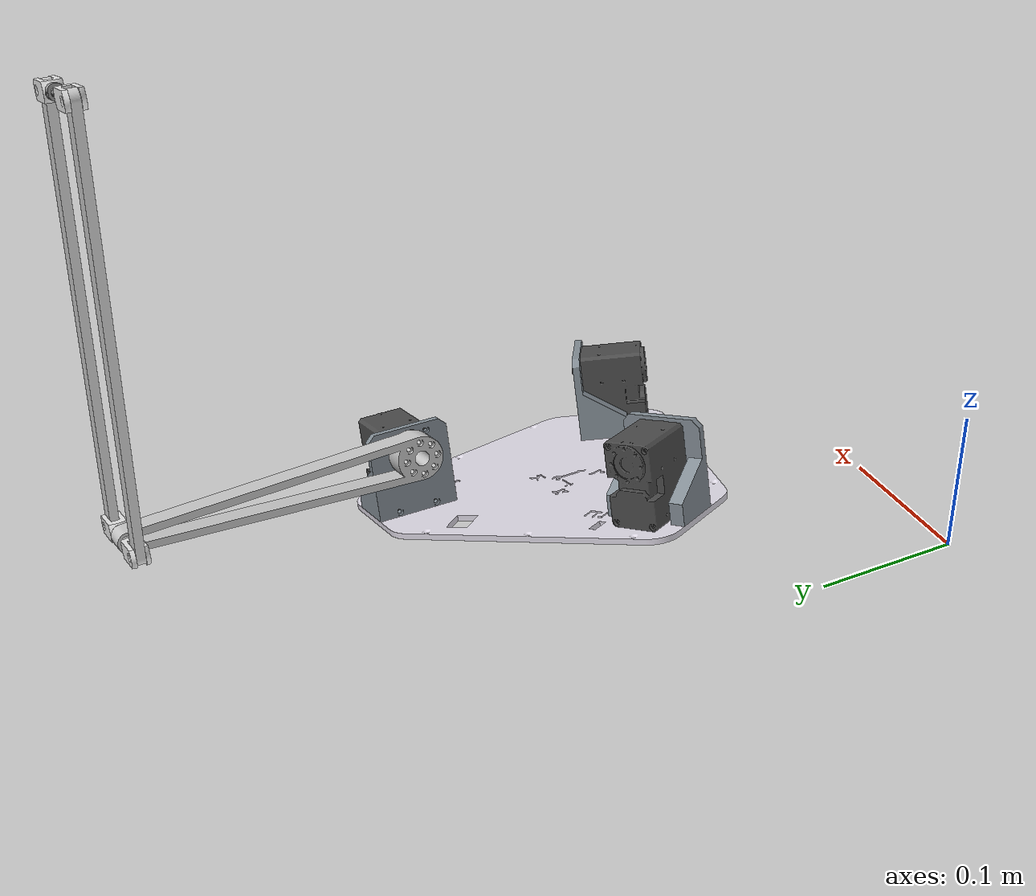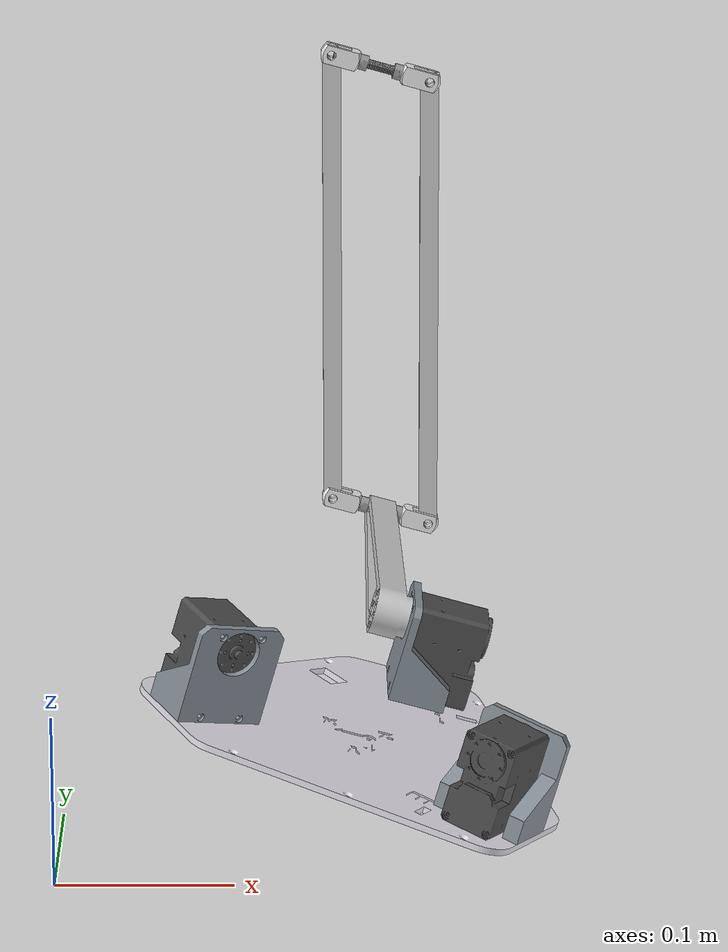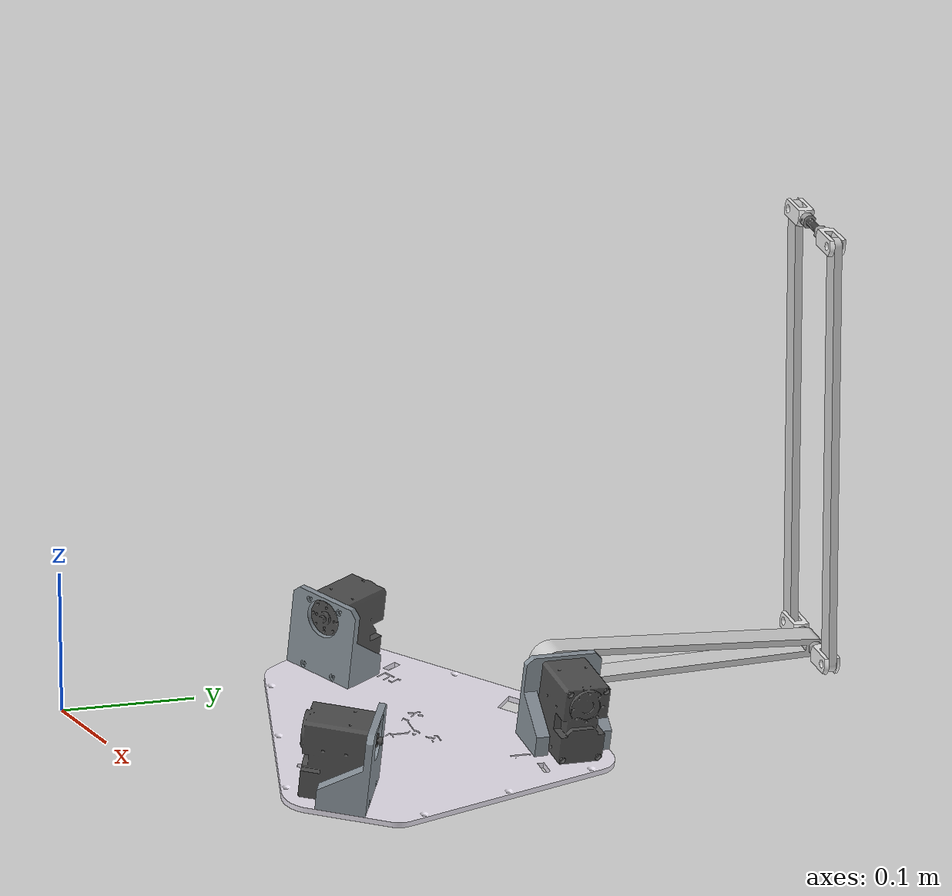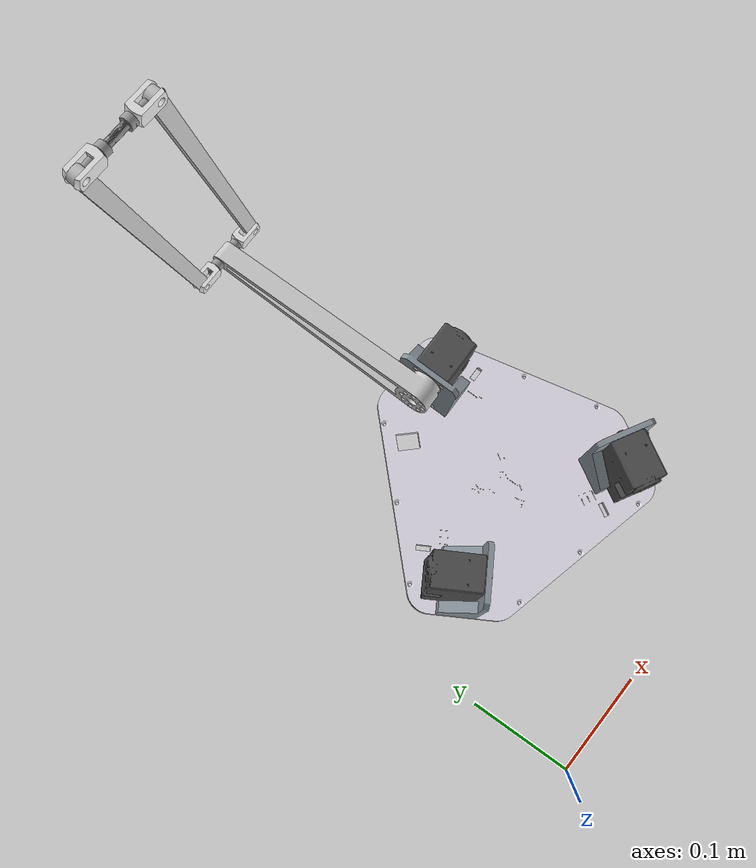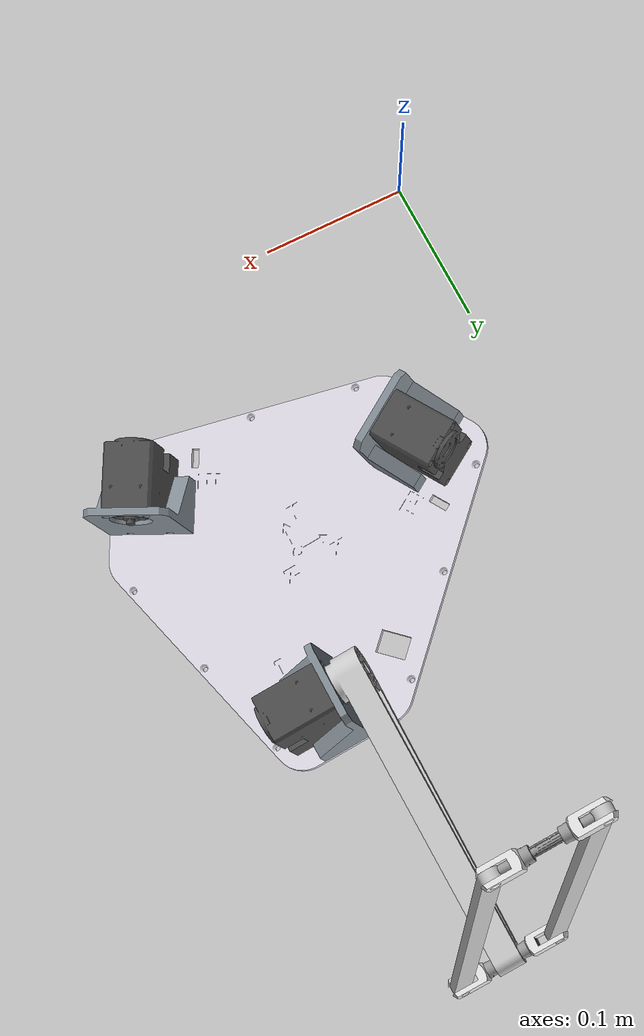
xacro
<?xml version="1.0"?>
<robot xmlns:xacro="http://www.ros.org/wiki/xacro" name="delta_robot">

    <link name = "world"></link>

        <joint name="base_joint" type="fixed">
            <origin xyz="0.2 0.2 0.002" rpy="0 0 0"/>
            <parent link="world"/>
            <child link="base_link"/>
        </joint>

    <link name="base_link">
    <visual>
    <origin xyz="-0.023110031553627802953 0.00059761139126591491209 0.00046021017996433028971" rpy="0.23991700798968396136 -0.13634001380767415967 2.0779359206972989327" />
    <geometry>
    <mesh filename="file://$(find delta_robot_description)/meshes/delta_robot/motor_mount.stl"/>
    </geometry>
    <material name="motor_mount_material">
    <color rgba="0.52941176470588235947 0.56862745098039213509 0.5999999999999999778 1.0"/>
    </material>
    </visual>
    <collision>
    <origin xyz="-0.023110031553627802953 0.00059761139126591491209 0.00046021017996433028971" rpy="0.23991700798968396136 -0.13634001380767415967 2.0779359206972989327" />
    <geometry>
    <mesh filename="file://$(find delta_robot_description)/meshes/delta_robot/motor_mount.stl"/>
    </geometry>
    </collision>
    <visual>
    <origin xyz="-0.023110031553628077039 0.00059761139126571715362 0.00046021017996440791858" rpy="-4.3919174410874769769e-17 0.27530038467016254566 -1.368025789096229261e-16" />
    <geometry>
    <mesh filename="file://$(find delta_robot_description)/meshes/delta_robot/base_plate.stl"/>
    </geometry>
    <material name="base_plate_material">
    <color rgba="0.89019607843137249503 0.87058823529411766273 0.91764705882352937127 1.0"/>
    </material>
    </visual>
    <collision>
    <origin xyz="-0.023110031553628077039 0.00059761139126571715362 0.00046021017996440791858" rpy="-4.3919174410874769769e-17 0.27530038467016254566 -1.368025789096229261e-16" />
    <geometry>
    <mesh filename="file://$(find delta_robot_description)/meshes/delta_robot/base_plate.stl"/>
    </geometry>
    </collision>
    <visual>
    <origin xyz="-0.023110031553628021528 0.00059761139126571715362 0.00046021017996439143871" rpy="-0.23991700798968387809 -0.13634001380767438172 -2.0779359206972998209" />
    <geometry>
    <mesh filename="file://$(find delta_robot_description)/meshes/delta_robot/motor_mount.stl"/>
    </geometry>
    <material name="motor_mount_material">
    <color rgba="0.52941176470588235947 0.56862745098039213509 0.5999999999999999778 1.0"/>
    </material>
    </visual>
    <collision>
    <origin xyz="-0.023110031553628021528 0.00059761139126571715362 0.00046021017996439143871" rpy="-0.23991700798968387809 -0.13634001380767438172 -2.0779359206972998209" />
    <geometry>
    <mesh filename="file://$(find delta_robot_description)/meshes/delta_robot/motor_mount.stl"/>
    </geometry>
    </collision>
    <visual>
    <origin xyz="0.054116209116546964975 -0.084259911111058571898 0.02930346982099296671" rpy="1.7111047631626310483 -0.23764750301736276006 2.6012158521185204663" />
    <geometry>
    <mesh filename="file://$(find delta_robot_description)/meshes/delta_robot/dc13_x540_dummy.stl"/>
    </geometry>
    <material name="dc13_x540_dummy_material">
    <color rgba="0.30196078431372547213 0.30196078431372547213 0.30196078431372547213 1.0"/>
    </material>
    </visual>
    <collision>
    <origin xyz="0.054116209116546964975 -0.084259911111058571898 0.02930346982099296671" rpy="1.7111047631626310483 -0.23764750301736276006 2.6012158521185204663" />
    <geometry>
    <mesh filename="file://$(find delta_robot_description)/meshes/delta_robot/dc13_x540_dummy.stl"/>
    </geometry>
    </collision>
    <visual>
    <origin xyz="0.028876303865395819975 0.1005976113912657316 0.036433060076806682293" rpy="1.2954959421247342899 -1.8687322889693179291e-17 -1.57079632679489678" />
    <geometry>
    <mesh filename="file://$(find delta_robot_description)/meshes/delta_robot/dc13_x540_dummy.stl"/>
    </geometry>
    <material name="dc13_x540_dummy_material">
    <color rgba="0.30196078431372547213 0.30196078431372547213 0.30196078431372547213 1.0"/>
    </material>
    </visual>
    <collision>
    <origin xyz="0.028876303865395819975 0.1005976113912657316 0.036433060076806682293" rpy="1.2954959421247342899 -1.8687322889693179291e-17 -1.57079632679489678" />
    <geometry>
    <mesh filename="file://$(find delta_robot_description)/meshes/delta_robot/dc13_x540_dummy.stl"/>
    </geometry>
    </collision>
    <visual>
    <origin xyz="-0.023110031553628101325 0.00059761139126574143975 0.00046021017996441399012" rpy="-6.8419796542742816048e-17 0.27530038467016249015 -2.3890377455942212863e-16" />
    <geometry>
    <mesh filename="file://$(find delta_robot_description)/meshes/delta_robot/motor_mount.stl"/>
    </geometry>
    <material name="motor_mount_material">
    <color rgba="0.52941176470588235947 0.56862745098039213509 0.5999999999999999778 1.0"/>
    </material>
    </visual>
    <collision>
    <origin xyz="-0.023110031553628101325 0.00059761139126574143975 0.00046021017996441399012" rpy="-6.8419796542742816048e-17 0.27530038467016249015 -2.3890377455942212863e-16" />
    <geometry>
    <mesh filename="file://$(find delta_robot_description)/meshes/delta_robot/motor_mount.stl"/>
    </geometry>
    </collision>
    <visual>
    <origin xyz="-0.11256658935566279944 -0.014544866106410024933 0.076386850046638948841" rpy="1.7111047631626283838 0.23764750301736262128 0.54037680147127353791" />
    <geometry>
    <mesh filename="file://$(find delta_robot_description)/meshes/delta_robot/dc13_x540_dummy.stl"/>
    </geometry>
    <material name="dc13_x540_dummy_material">
    <color rgba="0.30196078431372547213 0.30196078431372547213 0.30196078431372547213 1.0"/>
    </material>
    </visual>
    <collision>
    <origin xyz="-0.11256658935566279944 -0.014544866106410024933 0.076386850046638948841" rpy="1.7111047631626283838 0.23764750301736262128 0.54037680147127353791" />
    <geometry>
    <mesh filename="file://$(find delta_robot_description)/meshes/delta_robot/dc13_x540_dummy.stl"/>
    </geometry>
    </collision>
    <inertial>
    <origin xyz="-0.014722843883966257178 0.00055229382476979871439 0.030092286636779756737" rpy="0 0 0"/>
    <mass value="2.2633912012388970325" />
    <inertia ixx="0.01459982161503256895" ixy="-3.5913359316430172596e-06"  ixz="0.0031871485949549402394" iyy="0.013707418413198561163" iyz="-2.0616979340438708161e-06" izz="0.024978531491505182038" />
    </inertial>
    </link>

    <link name="bicep_rod">
    <visual>
    <origin xyz="-0.099999999999999977796 6.9388939039072283776e-18 -0.015749999999999993172" rpy="1.570796326794896558 -1.6239154051583478892e-20 1.7094472970908786213e-19" />
    <geometry>
    <mesh filename="file://$(find delta_robot_description)/meshes/delta_robot/bicep_rod.stl"/>
    </geometry>
    <material name="bicep_rod_material">
    <color rgba="0.80000000000000004441 0.80000000000000004441 0.80000000000000004441 1.0"/>
    </material>
    </visual>
    <collision>
    <origin xyz="-0.099999999999999977796 6.9388939039072283776e-18 -0.015749999999999993172" rpy="1.570796326794896558 -1.6239154051583478892e-20 1.7094472970908786213e-19" />
    <geometry>
    <mesh filename="file://$(find delta_robot_description)/meshes/delta_robot/bicep_rod.stl"/>
    </geometry>
    </collision>
    <inertial>
    <origin xyz="-0.078081968111977886893 -8.398143440593331819e-17 -0.014997482893929816802" rpy="0 0 0"/>
    <mass value="0.050961850551235823858" />
    <inertia ixx="5.2079917158922480535e-06" ixy="-3.1127885720887242077e-22"  ixz="-2.9944172647275568559e-06" iyy="0.00024166052430367850339" iyz="1.3307367841570673325e-20" izz="0.00024357414644567964841" />
    </inertial>
    </link>

    <link name="connecting_element">
    <visual>
    <origin xyz="0 0 3.4694469519536141888e-18" rpy="-3.141592653589793116 -1.8805132133692335928e-17 -2.9720651080614548656e-32" />
    <geometry>
    <mesh filename="file://$(find delta_robot_description)/meshes/delta_robot/connecting_element.stl"/>
    </geometry>
    <material name="connecting_element_material">
    <color rgba="0.5999999999999999778 0.5999999999999999778 0.5999999999999999778 1.0"/>
    </material>
    </visual>
    <collision>
    <origin xyz="0 0 3.4694469519536141888e-18" rpy="-3.141592653589793116 -1.8805132133692335928e-17 -2.9720651080614548656e-32" />
    <geometry>
    <mesh filename="file://$(find delta_robot_description)/meshes/delta_robot/connecting_element.stl"/>
    </geometry>
    </collision>
    <visual>
    <origin xyz="0 0 -0.032749999999999980516" rpy="-2.391790193480682418e-16 -1.5707963267948947816 0" />
    <geometry>
    <mesh filename="file://$(find delta_robot_description)/meshes/delta_robot/63755205_1.stl"/>
    </geometry>
    <material name="63755205_1_material">
    <color rgba="0.91764705882352937127 0.91764705882352937127 0.91764705882352937127 1.0"/>
    </material>
    </visual>
    <collision>
    <origin xyz="0 0 -0.032749999999999980516" rpy="-2.391790193480682418e-16 -1.5707963267948947816 0" />
    <geometry>
    <mesh filename="file://$(find delta_robot_description)/meshes/delta_robot/63755205_1.stl"/>
    </geometry>
    </collision>
    <visual>
    <origin xyz="0 0 -0.017750000000000015765" rpy="1.5707962596889333273 1.5707963267948947816 0" />
    <geometry>
    <mesh filename="file://$(find delta_robot_description)/meshes/delta_robot/63755205_3.stl"/>
    </geometry>
    <material name="63755205_3_material">
    <color rgba="0.64705882352941179736 0.64705882352941179736 0.64705882352941179736 1.0"/>
    </material>
    </visual>
    <collision>
    <origin xyz="0 0 -0.017750000000000015765" rpy="1.5707962596889333273 1.5707963267948947816 0" />
    <geometry>
    <mesh filename="file://$(find delta_robot_description)/meshes/delta_robot/63755205_3.stl"/>
    </geometry>
    </collision>
    <visual>
    <origin xyz="0 0 -0.020150000000000008182" rpy="1.5707963939008600107 -1.5707963267948947816 0" />
    <geometry>
    <mesh filename="file://$(find delta_robot_description)/meshes/delta_robot/63755205_2.stl"/>
    </geometry>
    <material name="63755205_2_material">
    <color rgba="0.5999999999999999778 0.5999999999999999778 0.5999999999999999778 1.0"/>
    </material>
    </visual>
    <collision>
    <origin xyz="0 0 -0.020150000000000008182" rpy="1.5707963939008600107 -1.5707963267948947816 0" />
    <geometry>
    <mesh filename="file://$(find delta_robot_description)/meshes/delta_robot/63755205_2.stl"/>
    </geometry>
    </collision>
    <visual>
    <origin xyz="0 5.5511151231257827021e-17 0.032749999999999987454" rpy="-3.141592653589793116 1.5707963267948947816 0" />
    <geometry>
    <mesh filename="file://$(find delta_robot_description)/meshes/delta_robot/63755205_1.stl"/>
    </geometry>
    <material name="63755205_1_material">
    <color rgba="0.91764705882352937127 0.91764705882352937127 0.91764705882352937127 1.0"/>
    </material>
    </visual>
    <collision>
    <origin xyz="0 5.5511151231257827021e-17 0.032749999999999987454" rpy="-3.141592653589793116 1.5707963267948947816 0" />
    <geometry>
    <mesh filename="file://$(find delta_robot_description)/meshes/delta_robot/63755205_1.stl"/>
    </geometry>
    </collision>
    <visual>
    <origin xyz="0 0 0.017750000000000008826" rpy="-1.5707962972486577691 -1.5707963267948947816 0" />
    <geometry>
    <mesh filename="file://$(find delta_robot_description)/meshes/delta_robot/63755205_3.stl"/>
    </geometry>
    <material name="63755205_3_material">
    <color rgba="0.64705882352941179736 0.64705882352941179736 0.64705882352941179736 1.0"/>
    </material>
    </visual>
    <collision>
    <origin xyz="0 0 0.017750000000000008826" rpy="-1.5707962972486577691 -1.5707963267948947816 0" />
    <geometry>
    <mesh filename="file://$(find delta_robot_description)/meshes/delta_robot/63755205_3.stl"/>
    </geometry>
    </collision>
    <visual>
    <origin xyz="-6.9388939039072283776e-18 0 0.020150000000000008182" rpy="-1.5707963563411353469 1.5707963267948947816 0" />
    <geometry>
    <mesh filename="file://$(find delta_robot_description)/meshes/delta_robot/63755205_2.stl"/>
    </geometry>
    <material name="63755205_2_material">
    <color rgba="0.5999999999999999778 0.5999999999999999778 0.5999999999999999778 1.0"/>
    </material>
    </visual>
    <collision>
    <origin xyz="-6.9388939039072283776e-18 0 0.020150000000000008182" rpy="-1.5707963563411353469 1.5707963267948947816 0" />
    <geometry>
    <mesh filename="file://$(find delta_robot_description)/meshes/delta_robot/63755205_2.stl"/>
    </geometry>
    </collision>
    <inertial>
    <origin xyz="-1.3905153371277223966e-08 1.4802751975635844368e-17 3.1345910604851122125e-18" rpy="0 0 0"/>
    <mass value="0.043235391457957531025" />
    <inertia ixx="2.1177413635247893832e-05" ixy="-1.6494616841134329302e-16"  ixz="8.8677558295449214432e-22" iyy="2.1049951816356449007e-05" iyz="4.4464792331085529532e-11" izz="1.0143582146042523588e-06" />
    </inertial>
    </link>

    <link name="forarm_rod">
    <visual>
    <origin xyz="1.7347234759768070944e-17 0.1500000000000000222 -0.0060000000000000053291" rpy="-1.570796326794896558 6.9161831051884444982e-33 -8.0182913253962339735e-20" />
    <geometry>
    <mesh filename="file://$(find delta_robot_description)/meshes/delta_robot/forarm_rod.stl"/>
    </geometry>
    <material name="forarm_rod_material">
    <color rgba="0.80000000000000004441 0.80000000000000004441 0.80000000000000004441 1.0"/>
    </material>
    </visual>
    <collision>
    <origin xyz="1.7347234759768070944e-17 0.1500000000000000222 -0.0060000000000000053291" rpy="-1.570796326794896558 6.9161831051884444982e-33 -8.0182913253962339735e-20" />
    <geometry>
    <mesh filename="file://$(find delta_robot_description)/meshes/delta_robot/forarm_rod.stl"/>
    </geometry>
    </collision>
    <inertial>
    <origin xyz="9.8967384901437695924e-18 0.14999999999999999445 -0.0030000000000000057003" rpy="0 0 0"/>
    <mass value="0.023080135190930273215" />
    <inertia ixx="0.00017907526073076087715" ixy="-1.4056536906109256041e-23"  ixz="-7.9906280679143198973e-37" iyy="3.4754053482994276583e-07" iyz="2.9549242177793815664e-36" izz="0.00017928432045444521957" />
    </inertial>
    </link>

    <link name="connecting_element_half">
    <visual>
    <origin xyz="0.022374999999999561906 -5.5511151231257827021e-17 0.0030000000000000026645" rpy="1.570796326794896558 9.2474677671490886807e-33 1.5707963267949029973" />
    <geometry>
    <mesh filename="file://$(find delta_robot_description)/meshes/delta_robot/connecting_element.stl"/>
    </geometry>
    <material name="connecting_element_material">
    <color rgba="0.5999999999999999778 0.5999999999999999778 0.5999999999999999778 1.0"/>
    </material>
    </visual>
    <collision>
    <origin xyz="0.022374999999999561906 -5.5511151231257827021e-17 0.0030000000000000026645" rpy="1.570796326794896558 9.2474677671490886807e-33 1.5707963267949029973" />
    <geometry>
    <mesh filename="file://$(find delta_robot_description)/meshes/delta_robot/connecting_element.stl"/>
    </geometry>
    </collision>
    <visual>
    <origin xyz="1.3877787807814456755e-17 0 0.0030000000000000026645" rpy="1.570796326794896558 -5.295434720174141822e-34 -1.6870131985463075254e-17" />
    <geometry>
    <mesh filename="file://$(find delta_robot_description)/meshes/delta_robot/63755205_1.stl"/>
    </geometry>
    <material name="63755205_1_material">
    <color rgba="0.91764705882352937127 0.91764705882352937127 0.91764705882352937127 1.0"/>
    </material>
    </visual>
    <collision>
    <origin xyz="1.3877787807814456755e-17 0 0.0030000000000000026645" rpy="1.570796326794896558 -5.295434720174141822e-34 -1.6870131985463075254e-17" />
    <geometry>
    <mesh filename="file://$(find delta_robot_description)/meshes/delta_robot/63755205_1.stl"/>
    </geometry>
    </collision>
    <visual>
    <origin xyz="0.0149999999999999023 0 0.0030000000000000026645" rpy="-3.141592653589793116 -1.7097877277573855029e-33 -3.141592653589793116" />
    <geometry>
    <mesh filename="file://$(find delta_robot_description)/meshes/delta_robot/63755205_3.stl"/>
    </geometry>
    <material name="63755205_3_material">
    <color rgba="0.64705882352941179736 0.64705882352941179736 0.64705882352941179736 1.0"/>
    </material>
    </visual>
    <collision>
    <origin xyz="0.0149999999999999023 0 0.0030000000000000026645" rpy="-3.141592653589793116 -1.7097877277573855029e-33 -3.141592653589793116" />
    <geometry>
    <mesh filename="file://$(find delta_robot_description)/meshes/delta_robot/63755205_3.stl"/>
    </geometry>
    </collision>
    <visual>
    <origin xyz="0.012600000000000000089 0 0.0030000000000000026645" rpy="3.141592653589793116 1.7097877277573855029e-33 2.5164096976560911743e-17" />
    <geometry>
    <mesh filename="file://$(find delta_robot_description)/meshes/delta_robot/63755205_2.stl"/>
    </geometry>
    <material name="63755205_2_material">
    <color rgba="0.5999999999999999778 0.5999999999999999778 0.5999999999999999778 1.0"/>
    </material>
    </visual>
    <collision>
    <origin xyz="0.012600000000000000089 0 0.0030000000000000026645" rpy="3.141592653589793116 1.7097877277573855029e-33 2.5164096976560911743e-17" />
    <geometry>
    <mesh filename="file://$(find delta_robot_description)/meshes/delta_robot/63755205_2.stl"/>
    </geometry>
    </collision>
    <inertial>
    <origin xyz="0.012864630837702900265 -1.3905153382327622413e-08 0.0030000646875871744661" rpy="0 0 0"/>
    <mass value="0.021617695728978765513" />
    <inertia ixx="5.0717910721165967248e-07" ixy="6.6564635392713882125e-13"  ixz="-5.5752359984376380754e-12" iyy="2.0404666472955742842e-06" iyz="-7.7492125696112665976e-12" izz="1.9767357379403353191e-06" />
    </inertial>
    </link>

    <link name="closing_arm1_2">
    <inertial>
    <origin xyz="0 0 0" rpy="0 0 0" />
    <mass value="1e-9" />
    <inertia ixx="0" ixy="0" ixz="0" iyy="0" iyz="0" izz="0" />
    </inertial>
    </link>
    <joint name="closing_arm1_2_frame" type="fixed">
    <origin xyz="0.032749999999999127032 0 0.0030000000000000026645" rpy="1.570796326794896558 -9.2474677671490886807e-33 -1.5707963267948901187" />
    <parent link="connecting_element_half" />
    <child link="closing_arm1_2" />
    <axis xyz="0 0 0"/>
    </joint>

    <joint name="15_wheel" type="continuous">
    <origin xyz="-6.9388939039072283776e-18 0.29999999999999993339 0" rpy="3.141592653589793116 1.3494684255667428467e-19 2.8625487015286119608" />
    <parent link="forarm_rod" />
    <child link="connecting_element_half" />
    <axis xyz="0 0 1"/>
    <limit effort="1" velocity="20" />
    <joint_properties friction="0.0"/>
    </joint>

    <joint name="12_wheel" type="continuous">
    <origin xyz="3.4694469519536141888e-17 0.0029999999999998916422 0.032749999999999980516" rpy="-1.570796326794896558 -1.2917523747338155449 6.0725629327589034363e-15" />
    <parent link="connecting_element" />
    <child link="forarm_rod" />
    <axis xyz="0 0 1"/>
    <limit effort="1" velocity="20" />
    <joint_properties friction="0.0"/>
    </joint>

    <link name="forarm_rod_2">
    <visual>
    <origin xyz="1.3877787807814456755e-17 -0.14999999999999996669 -0.0060000000000000608402" rpy="-1.570796326794896558 1.5829041967468274427e-32 -5.7272800960227835587e-19" />
    <geometry>
    <mesh filename="file://$(find delta_robot_description)/meshes/delta_robot/forarm_rod.stl"/>
    </geometry>
    <material name="forarm_rod_material">
    <color rgba="0.80000000000000004441 0.80000000000000004441 0.80000000000000004441 1.0"/>
    </material>
    </visual>
    <collision>
    <origin xyz="1.3877787807814456755e-17 -0.14999999999999996669 -0.0060000000000000608402" rpy="-1.570796326794896558 1.5829041967468274427e-32 -5.7272800960227835587e-19" />
    <geometry>
    <mesh filename="file://$(find delta_robot_description)/meshes/delta_robot/forarm_rod.stl"/>
    </geometry>
    </collision>
    <inertial>
    <origin xyz="6.4272915381901554036e-18 -0.14999999999999999445 -0.0030000000000000612115" rpy="0 0 0"/>
    <mass value="0.023080135190930273215" />
    <inertia ixx="0.00017907526073076087715" ixy="-1.0253167200819512206e-22"  ixz="-2.4814686238024760048e-36" iyy="3.4754053482994265995e-07" iyz="2.5489915394879887598e-36" izz="0.00017928432045444521957" />
    </inertial>
    </link>

    <link name="connecting_element_half_2">
    <visual>
    <origin xyz="0.022375000000000005995 0 0.0030000000000000026645" rpy="1.570796326794896558 6.6804156396543488579e-33 1.570796326794896558" />
    <geometry>
    <mesh filename="file://$(find delta_robot_description)/meshes/delta_robot/connecting_element.stl"/>
    </geometry>
    <material name="connecting_element_material">
    <color rgba="0.5999999999999999778 0.5999999999999999778 0.5999999999999999778 1.0"/>
    </material>
    </visual>
    <collision>
    <origin xyz="0.022375000000000005995 0 0.0030000000000000026645" rpy="1.570796326794896558 6.6804156396543488579e-33 1.570796326794896558" />
    <geometry>
    <mesh filename="file://$(find delta_robot_description)/meshes/delta_robot/connecting_element.stl"/>
    </geometry>
    </collision>
    <visual>
    <origin xyz="2.7755575615628913511e-17 5.5511151231257827021e-17 0.0030000000000000026645" rpy="1.570796326794896558 -7.4993822297979160836e-33 2.2417968472724009087e-17" />
    <geometry>
    <mesh filename="file://$(find delta_robot_description)/meshes/delta_robot/63755205_1.stl"/>
    </geometry>
    <material name="63755205_1_material">
    <color rgba="0.91764705882352937127 0.91764705882352937127 0.91764705882352937127 1.0"/>
    </material>
    </visual>
    <collision>
    <origin xyz="2.7755575615628913511e-17 5.5511151231257827021e-17 0.0030000000000000026645" rpy="1.570796326794896558 -7.4993822297979160836e-33 2.2417968472724009087e-17" />
    <geometry>
    <mesh filename="file://$(find delta_robot_description)/meshes/delta_robot/63755205_1.stl"/>
    </geometry>
    </collision>
    <visual>
    <origin xyz="0.015000000000000013323 5.5511151231257827021e-17 0.0030000000000000026645" rpy="3.141592653589793116 7.4993822297979160836e-33 -3.141592653589793116" />
    <geometry>
    <mesh filename="file://$(find delta_robot_description)/meshes/delta_robot/63755205_3.stl"/>
    </geometry>
    <material name="63755205_3_material">
    <color rgba="0.64705882352941179736 0.64705882352941179736 0.64705882352941179736 1.0"/>
    </material>
    </visual>
    <collision>
    <origin xyz="0.015000000000000013323 5.5511151231257827021e-17 0.0030000000000000026645" rpy="3.141592653589793116 7.4993822297979160836e-33 -3.141592653589793116" />
    <geometry>
    <mesh filename="file://$(find delta_robot_description)/meshes/delta_robot/63755205_3.stl"/>
    </geometry>
    </collision>
    <visual>
    <origin xyz="0.012600000000000027844 5.5511151231257827021e-17 0.0030000000000000026645" rpy="-3.141592653589793116 -7.4993822297979160836e-33 2.2417968472724009087e-17" />
    <geometry>
    <mesh filename="file://$(find delta_robot_description)/meshes/delta_robot/63755205_2.stl"/>
    </geometry>
    <material name="63755205_2_material">
    <color rgba="0.5999999999999999778 0.5999999999999999778 0.5999999999999999778 1.0"/>
    </material>
    </visual>
    <collision>
    <origin xyz="0.012600000000000027844 5.5511151231257827021e-17 0.0030000000000000026645" rpy="-3.141592653589793116 -7.4993822297979160836e-33 2.2417968472724009087e-17" />
    <geometry>
    <mesh filename="file://$(find delta_robot_description)/meshes/delta_robot/63755205_2.stl"/>
    </geometry>
    </collision>
    <inertial>
    <origin xyz="0.012864630837703068533 -1.3905153326681018702e-08 0.0030000646875871744661" rpy="0 0 0"/>
    <mass value="0.021617695728978765513" />
    <inertia ixx="5.0717910721166867221e-07" ixy="6.6564635546140588162e-13"  ixz="-5.5752359984374272413e-12" iyy="2.0404666472956513642e-06" iyz="-7.7492125696116898814e-12" izz="1.976735737940370471e-06" />
    </inertial>
    </link>

    <link name="closing_arm1_1">
    <inertial>
    <origin xyz="0 0 0" rpy="0 0 0" />
    <mass value="1e-9" />
    <inertia ixx="0" ixy="0" ixz="0" iyy="0" iyz="0" izz="0" />
    </inertial>
    </link>
    <joint name="closing_arm1_1_frame" type="fixed">
    <origin xyz="0.03275000000000001521 0 0.0030000000000000026645" rpy="1.570796326794896558 6.6804156396543488579e-33 1.570796326794896558" />
    <parent link="connecting_element_half_2" />
    <child link="closing_arm1_1" />
    <axis xyz="0 0 0"/>
    </joint>

    <joint name="14_wheel" type="continuous">
    <origin xyz="0 -0.2999999999999999889 -5.5511151231257827021e-17" rpy="-3.141592653589793116 -5.683658770171697155e-19 2.8625487015286110726" />
    <parent link="forarm_rod_2" />
    <child link="connecting_element_half_2" />
    <axis xyz="0 0 1"/>
    <limit effort="1" velocity="20" />
    <joint_properties friction="0.0"/>
    </joint>

    <joint name="13_wheel" type="continuous">
    <origin xyz="1.3877787807814456755e-17 0.0029999999999998916422 -0.032749999999999987454" rpy="1.570796326794896558 1.2917523747338124362 -3.1415926535897873428" />
    <parent link="connecting_element" />
    <child link="forarm_rod_2" />
    <axis xyz="0 0 1"/>
    <limit effort="1" velocity="20" />
    <joint_properties friction="0.0"/>
    </joint>

    <joint name="11_wheel" type="continuous">
    <origin xyz="-0.19999999999999998335 1.3877787807814456755e-17 -0.015749999999999993172" rpy="-1.6985271393261636271e-15 1.8442631459610602093e-16 -1.5627224950883407129" />
    <parent link="bicep_rod" />
    <child link="connecting_element" />
    <axis xyz="0 0 1"/>
    <limit effort="1" velocity="20" />
    <joint_properties friction="0.0"/>
    </joint>

    <joint name="motor_1" type="revolute">
    <origin xyz="0.0052988860164292078681 0.10059761139126568996 0.043093042627477082251" rpy="-1.8461052380927969185 -0.0077697939166388304763 -1.5686015243309161526" />
    <parent link="base_link" />
    <child link="bicep_rod" />
    <axis xyz="0 0 1"/>
    <limit effort="1" velocity="20" lower="-0.52359877559829881566" upper="1.570796326794896558"/>
    <joint_properties friction="0.0"/>
    </joint>

    <!-- ********** PLUGINS ********** -->
    <gazebo>
        <plugin name="gazebo_ros_joint_state_publisher" filename="libgazebo_ros_joint_state_publisher.so">
            <update_rate>20</update_rate>
            <joint_name>motor_1</joint_name>
        </plugin>
    </gazebo>

    <gazebo>
        <plugin name="gazebo_ros_joint_pose_trajectory" filename="libgazebo_ros_joint_pose_trajectory.so">
            <update_rate>20</update_rate>
        </plugin>
    </gazebo>

    <gazebo>
        <joint name="joint_E" type="fixed">
            <pose>0 0 0 0 0 0</pose>
            <parent>closing_arm1_1</parent>
            <child>closing_arm1_2</child>
        </joint>
    </gazebo>

</robot>
